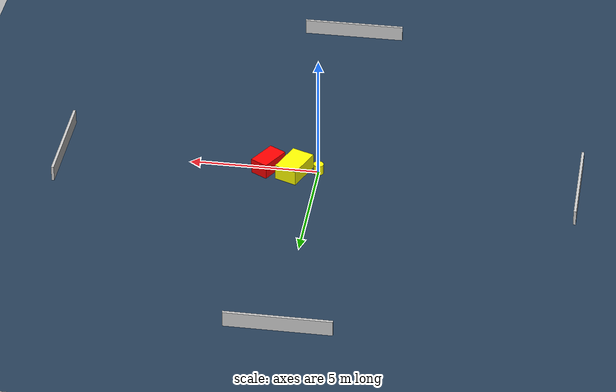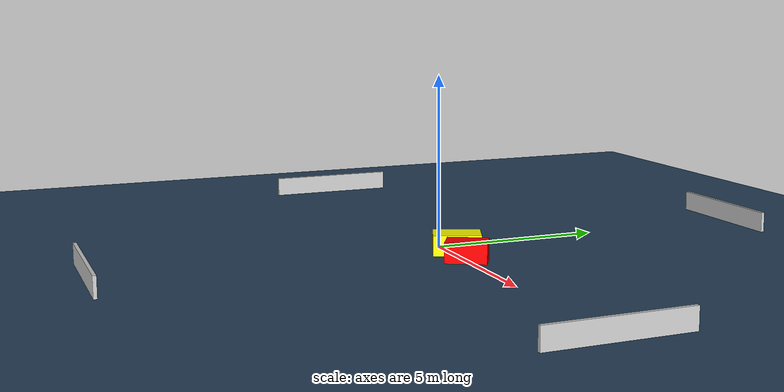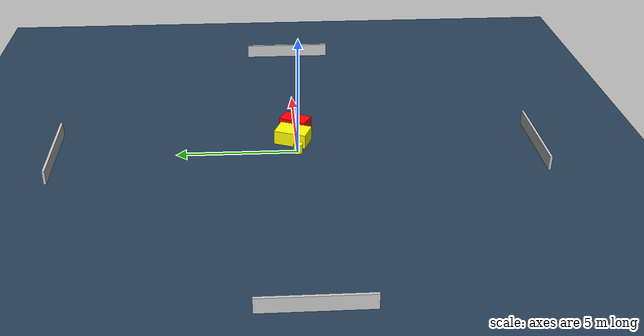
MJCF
<?xml version="1.0" ?>
<mujoco model="generated_environment">
  <option timestep="0.01" integrator="RK4" cone="elliptic"/>
  <default>
    <geom density="1"/>
  </default>
  <asset>
    <texture builtin="gradient" height="3072" name="skybox" rgb1="0.3 0.5 0.7" rgb2="0 0 0" type="skybox" width="512"/>
    <texture builtin="checker" height="300" name="groundplane" rgb1="0.2 0.3 0.4" rgb2="0.1 0.2 0.3" type="2d" width="300"/>
    <material name="groundplane" reflectance="0.2" texrepeat="5 5" texture="groundplane"/>
  </asset>
  <worldbody>
    <light dir="0 0 -1" directional="true" pos="0 0 1.5"/>
    <geom condim="3" friction="0.5 0.005 0.001" material="groundplane" name="floor" pos="0 0 0" size="0 0 0.05" type="plane"/>
    <body name="walls">
      <geom name="wall_1" condim="4" pos="-10.0 0.0 0.3" rgba="0.800000011920929 0.800000011920929 0.800000011920929 1.0" size="0.05 2.0 0.3" type="box"/>
      <geom name="wall_2" condim="4" pos="10.0 0.0 0.3" rgba="0.800000011920929 0.800000011920929 0.800000011920929 1.0" size="0.05 2.0 0.3" type="box"/>
      <geom name="wall_3" condim="4" pos="0.0 -10.0 0.3" rgba="0.800000011920929 0.800000011920929 0.800000011920929 1.0" size="2.0 0.05 0.3" type="box"/>
      <geom name="wall_4" condim="4" pos="0.0 10.0 0.3" rgba="0.800000011920929 0.800000011920929 0.800000011920929 1.0" size="2.0 0.05 0.3" type="box"/>
    </body>
    <body name="robot">
      <joint name="joint_x" type="slide" pos="0 0 0" axis="1 0 0"/>
      <joint name="joint_y" type="slide" pos="0 0 0" axis="0 1 0"/>
      <geom name="robot" type="cylinder" pos="0.0 0.0 0.2" size="0.2 0.2 0.0" mass="5.0" friction="1.0 0.005 0.0001" condim="4" rgba="1.0 1.0 0.0 1.0"/>
    </body>
    <body name="obstacle_1_movable">
      <geom name="obstacle_1_movable" condim="4" pos="0.9166062457355355 0.16119655836616886 0.3" euler="0 0 338.12214039384844" friction="0.0 0.005 0.001" rgba="1.0 1.0 0.0 1.0" size="0.44765294839937786 0.6868188182660484 0.3" type="box" mass="0.1"/>
      <joint type="free"/>
    </body>
    <body name="obstacle_2_static">
      <geom name="obstacle_2_static" condim="4" pos="1.9554375167221765 0.0066178727771942 0.3" euler="0 0 330.1937533528858" friction="0.0 0.005 0.001" rgba="1.0 0.0 0.0 1.0" size="0.35963951166638763 0.5917989317325686 0.3" type="box"/>
    </body>
  </worldbody>
  <actuator>
    <motor name="actuator_x" joint="joint_x" gear="1" ctrlrange="-1 1"/>
    <motor name="actuator_y" joint="joint_y" gear="1" ctrlrange="-1 1"/>
  </actuator>
</mujoco>
